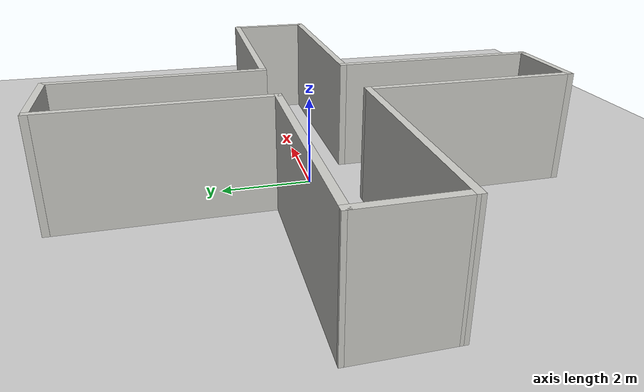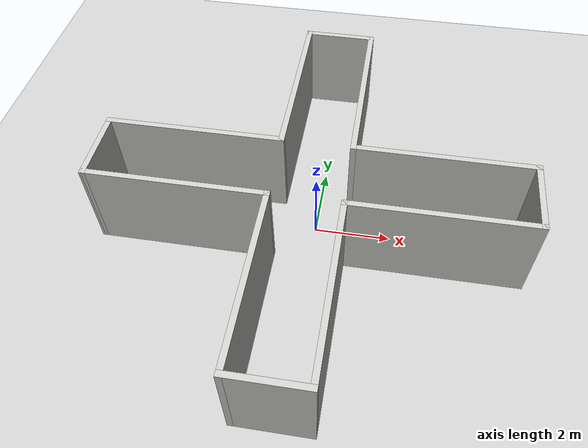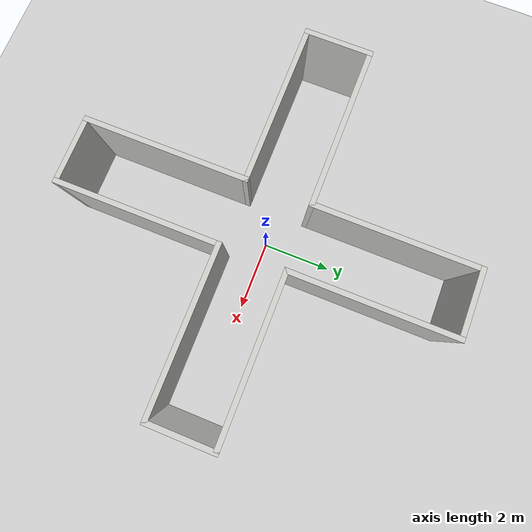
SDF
<sdf version="1.7">
 <world name="default">
  <light name="sun" type="directional">
   <pose>0 0 10 0 -0 0</pose>
   <diffuse>0.8 0.8 0.8 1</diffuse>
   <specular>0.2 0.2 0.2 1</specular>
   <attenuation>
    <range>1000</range>
    <constant>0.9</constant>
    <linear>0.01</linear>
    <quadratic>0.001</quadratic>
   </attenuation>
   <direction>-0.5 0.1 -0.9</direction>
   <spot><inner_angle>0</inner_angle><outer_angle>0</outer_angle><falloff>0</falloff></spot>
  </light>
  <model name="ground_plane">
   <static>1</static>
   <link name="link">
    <collision name="collision">
     <geometry><plane><normal>0 0 1</normal><size>100 100</size></plane></geometry>
     <surface><friction><ode><mu>100</mu><mu2>50</mu2></ode></friction></surface>
    </collision>
    <visual name="visual">
     <cast_shadows>0</cast_shadows>
     <geometry><plane><normal>0 0 1</normal><size>100 100</size></plane></geometry>
     <material>
      <script><uri>file://media/materials/scripts/gazebo.material</uri><name>Gazebo/Grey</name></script>
     </material>
    </visual>
   </link>
  </model>
  <gravity>0 0 -9.8</gravity>
  <magnetic_field>6e-06 2.3e-05 -4.2e-05</magnetic_field>
  <atmosphere type="adiabatic"/>
  <physics type="ode">
   <max_step_size>0.001</max_step_size>
   <real_time_factor>1</real_time_factor>
   <real_time_update_rate>1000</real_time_update_rate>
  </physics>
  <scene><ambient>0.4 0.4 0.4 1</ambient><background>0.7 0.7 0.7 1</background><shadows>1</shadows></scene>
  <spherical_coordinates>
   <surface_model>EARTH_WGS84</surface_model>
   <latitude_deg>0</latitude_deg>
   <longitude_deg>0</longitude_deg>
   <elevation>0</elevation>
   <heading_deg>0</heading_deg>
  </spherical_coordinates>
  <model name="CrossWorld">
   <pose>-0.116358 -0.050064 0 0 -0 0</pose>
   <link name="Wall_0">
    <collision name="Wall_0_Collision">
     <geometry><box><size>4.75 0.15 2.5</size></box></geometry>
     <pose>0 0 1.25 0 -0 0</pose>
    </collision>
    <visual name="Wall_0_Visual">
     <pose>0 0 1.25 0 -0 0</pose>
     <geometry><box><size>4.75 0.15 2.5</size></box></geometry>
     <material>
      <script><uri>file://media/materials/scripts/gazebo.material</uri><name>Gazebo/CeilingTiled</name></script>
      <ambient>1 1 1 1</ambient>
     </material>
     <meta><layer>0</layer></meta>
    </visual>
    <pose>-0.924989 3.225 0 0 -0 -1.5708</pose>
   </link>
   <link name="Wall_14">
    <collision name="Wall_14_Collision">
     <geometry><box><size>2 0.15 2.5</size></box></geometry>
     <pose>0 0 1.25 0 -0 0</pose>
    </collision>
    <visual name="Wall_14_Visual">
     <pose>0 0 1.25 0 -0 0</pose>
     <geometry><box><size>2 0.15 2.5</size></box></geometry>
     <material>
      <script><uri>file://media/materials/scripts/gazebo.material</uri><name>Gazebo/CeilingTiled</name></script>
      <ambient>1 1 1 1</ambient>
     </material>
     <meta><layer>0</layer></meta>
    </visual>
    <pose>1.2e-05 5.525 0 0 -0 0</pose>
   </link>
   <link name="Wall_15">
    <collision name="Wall_15_Collision">
     <geometry><box><size>4.75 0.15 2.5</size></box></geometry>
     <pose>0 0 1.25 0 -0 0</pose>
    </collision>
    <visual name="Wall_15_Visual">
     <pose>0 0 1.25 0 -0 0</pose>
     <geometry><box><size>4.75 0.15 2.5</size></box></geometry>
     <material>
      <script><uri>file://media/materials/scripts/gazebo.material</uri><name>Gazebo/CeilingTiled</name></script>
      <ambient>1 1 1 1</ambient>
     </material>
     <meta><layer>0</layer></meta>
    </visual>
    <pose>0.925012 3.225 0 0 -0 -1.5708</pose>
   </link>
   <link name="Wall_16">
    <collision name="Wall_16_Collision">
     <geometry><box><size>4.75 0.15 2.5</size></box></geometry>
     <pose>0 0 1.25 0 -0 0</pose>
    </collision>
    <visual name="Wall_16_Visual">
     <pose>0 0 1.25 0 -0 0</pose>
     <geometry><box><size>4.75 0.15 2.5</size></box></geometry>
     <material>
      <script><uri>file://media/materials/scripts/gazebo.material</uri><name>Gazebo/CeilingTiled</name></script>
      <ambient>1 1 1 1</ambient>
     </material>
     <meta><layer>0</layer></meta>
    </visual>
    <pose>3.22501 0.925 0 0 -0 0</pose>
   </link>
   <link name="Wall_17">
    <collision name="Wall_17_Collision">
     <geometry><box><size>2 0.15 2.5</size></box></geometry>
     <pose>0 0 1.25 0 -0 0</pose>
    </collision>
    <visual name="Wall_17_Visual">
     <pose>0 0 1.25 0 -0 0</pose>
     <geometry><box><size>2 0.15 2.5</size></box></geometry>
     <material>
      <script><uri>file://media/materials/scripts/gazebo.material</uri><name>Gazebo/CeilingTiled</name></script>
      <ambient>1 1 1 1</ambient>
     </material>
     <meta><layer>0</layer></meta>
    </visual>
    <pose>5.52501 0 0 0 -0 -1.5708</pose>
   </link>
   <link name="Wall_18">
    <collision name="Wall_18_Collision">
     <geometry><box><size>4.75 0.15 2.5</size></box></geometry>
     <pose>0 0 1.25 0 -0 0</pose>
    </collision>
    <visual name="Wall_18_Visual">
     <pose>0 0 1.25 0 -0 0</pose>
     <geometry><box><size>4.75 0.15 2.5</size></box></geometry>
     <material>
      <script><uri>file://media/materials/scripts/gazebo.material</uri><name>Gazebo/CeilingTiled</name></script>
      <ambient>1 1 1 1</ambient>
     </material>
     <meta><layer>0</layer></meta>
    </visual>
    <pose>3.22501 -0.925 0 0 -0 3.14159</pose>
   </link>
   <link name="Wall_19">
    <collision name="Wall_19_Collision">
     <geometry><box><size>4.75 0.15 2.5</size></box></geometry>
     <pose>0 0 1.25 0 -0 0</pose>
    </collision>
    <visual name="Wall_19_Visual">
     <pose>0 0 1.25 0 -0 0</pose>
     <geometry><box><size>4.75 0.15 2.5</size></box></geometry>
     <material>
      <script><uri>file://media/materials/scripts/gazebo.material</uri><name>Gazebo/CeilingTiled</name></script>
      <ambient>1 1 1 1</ambient>
     </material>
     <meta><layer>0</layer></meta>
    </visual>
    <pose>0.925012 -3.225 0 0 -0 -1.5708</pose>
   </link>
   <link name="Wall_20">
    <collision name="Wall_20_Collision">
     <geometry><box><size>2 0.15 2.5</size></box></geometry>
     <pose>0 0 1.25 0 -0 0</pose>
    </collision>
    <visual name="Wall_20_Visual">
     <pose>0 0 1.25 0 -0 0</pose>
     <geometry><box><size>2 0.15 2.5</size></box></geometry>
     <material>
      <script><uri>file://media/materials/scripts/gazebo.material</uri><name>Gazebo/CeilingTiled</name></script>
      <ambient>1 1 1 1</ambient>
     </material>
     <meta><layer>0</layer></meta>
    </visual>
    <pose>1.2e-05 -5.525 0 0 -0 3.14159</pose>
   </link>
   <link name="Wall_21">
    <collision name="Wall_21_Collision">
     <geometry><box><size>4.75 0.15 2.5</size></box></geometry>
     <pose>0 0 1.25 0 -0 0</pose>
    </collision>
    <visual name="Wall_21_Visual">
     <pose>0 0 1.25 0 -0 0</pose>
     <geometry><box><size>4.75 0.15 2.5</size></box></geometry>
     <material>
      <script><uri>file://media/materials/scripts/gazebo.material</uri><name>Gazebo/CeilingTiled</name></script>
      <ambient>1 1 1 1</ambient>
     </material>
     <meta><layer>0</layer></meta>
    </visual>
    <pose>-0.924989 -3.225 0 0 -0 1.5708</pose>
   </link>
   <link name="Wall_22">
    <collision name="Wall_22_Collision">
     <geometry><box><size>4.75 0.15 2.5</size></box></geometry>
     <pose>0 0 1.25 0 -0 0</pose>
    </collision>
    <visual name="Wall_22_Visual">
     <pose>0 0 1.25 0 -0 0</pose>
     <geometry><box><size>4.75 0.15 2.5</size></box></geometry>
     <material>
      <script><uri>file://media/materials/scripts/gazebo.material</uri><name>Gazebo/CeilingTiled</name></script>
      <ambient>1 1 1 1</ambient>
     </material>
     <meta><layer>0</layer></meta>
    </visual>
    <pose>-3.22499 -0.925 0 0 -0 3.14159</pose>
   </link>
   <link name="Wall_23">
    <collision name="Wall_23_Collision">
     <geometry><box><size>1.99554 0.15 2.5</size></box></geometry>
     <pose>0 0 1.25 0 -0 0</pose>
    </collision>
    <visual name="Wall_23_Visual">
     <pose>0 0 1.25 0 -0 0</pose>
     <geometry><box><size>1.99554 0.15 2.5</size></box></geometry>
     <material>
      <script><uri>file://media/materials/scripts/gazebo.material</uri><name>Gazebo/CeilingTiled</name></script>
      <ambient>1 1 1 1</ambient>
     </material>
     <meta><layer>0</layer></meta>
    </visual>
    <pose>-5.52471 -0.002229 0 0 -0 1.57049</pose>
   </link>
   <link name="Wall_7">
    <collision name="Wall_7_Collision">
     <geometry><box><size>4.75 0.15 2.5</size></box></geometry>
     <pose>0 0 1.25 0 -0 0</pose>
    </collision>
    <visual name="Wall_7_Visual">
     <pose>0 0 1.25 0 -0 0</pose>
     <geometry><box><size>4.75 0.15 2.5</size></box></geometry>
     <material>
      <script><uri>file://media/materials/scripts/gazebo.material</uri><name>Gazebo/CeilingTiled</name></script>
      <ambient>1 1 1 1</ambient>
     </material>
     <meta><layer>0</layer></meta>
    </visual>
    <pose>-3.22443 0.920541 0 0 -0 0</pose>
   </link>
   <static>1</static>
  </model>
 </world>
</sdf>
